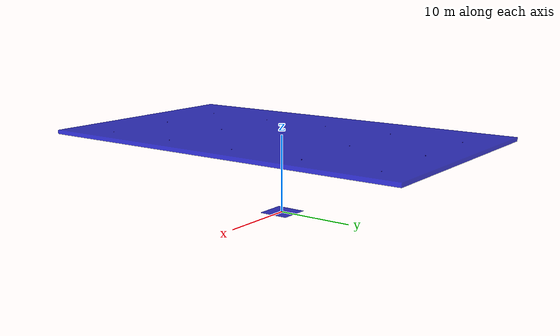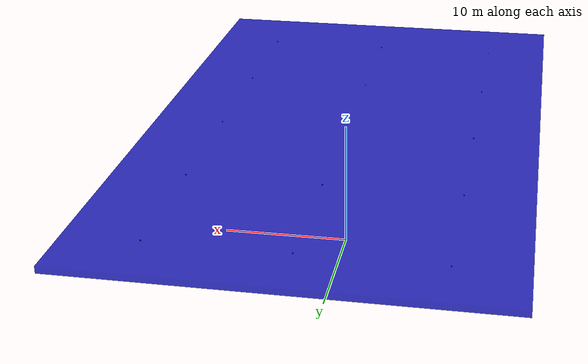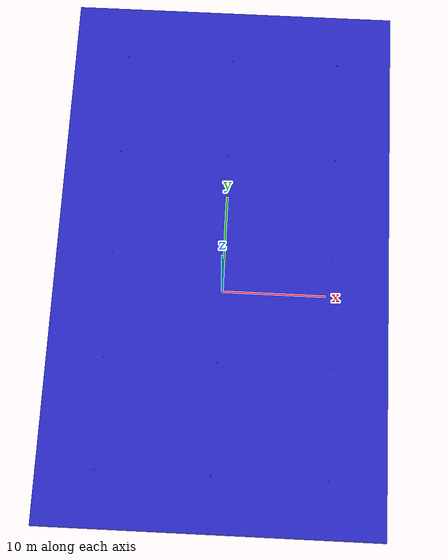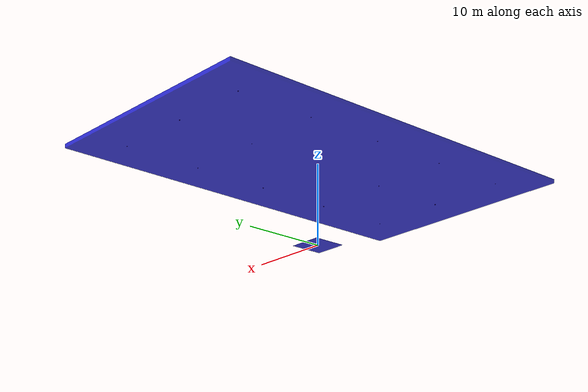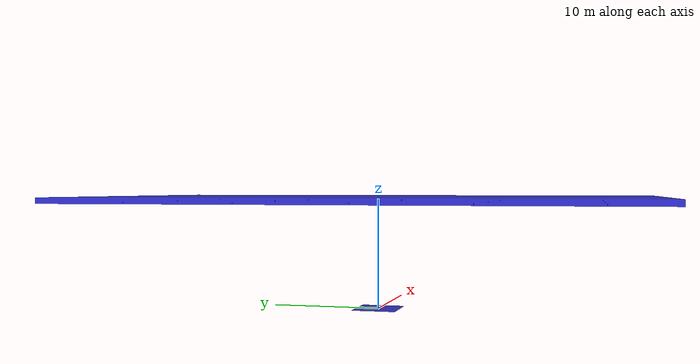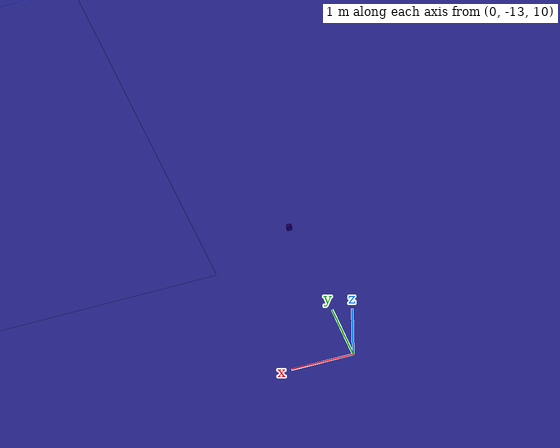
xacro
<?xml version="1.0" ?>
<robot name="factory_cam" xmlns:xacro="http://www.ros.org/wiki/xacro" >
<xacro:include filename = "$(find cam_pack)/urdf/factory_fisheye_cam.plugins.xacro"/>

<xacro:property name="height_off_ground" value="10" />
<xacro:property name="height_off_ground_offset" value="0.2" />
<xacro:property name="cam_separation" value="10" />
<xacro:property name="cam_box_size" value="0.07" />
<xacro:property name="cam_mass" value="0.25" />
<xacro:property name="cam_z_joint_height" value="${height_off_ground - height_off_ground_offset}" />

<xacro:property name="cam_inertia_xx" value="0.00020416666666666668" />
<xacro:property name="cam_inertia_yy" value="0.00020416666666666668" />
<xacro:property name="cam_inertia_zz" value="0.00020416666666666668" />

<xacro:property name="ceiling_mass" value="50" />
<xacro:property name="ceiling_inertia_xx" value="150.16666666666669" />
<xacro:property name="ceiling_inertia_yy" value="337.66666666666674" />
<xacro:property name="ceiling_inertia_zz" value="487.50000000000006" />
<xacro:property name="ceiling_width" value="30" />
<xacro:property name="ceiling_length" value="50" />
<xacro:property name="ceiling_thickness" value="0.5" />

    <!-- Specify material colors here -->
    <material name="blue">
        <color rgba="0 0 0.8 0.8"/>
    </material>
    <material name="red">
        <color rgba="0.8 0 0 1"/>
    </material>
    <material name="grey">
        <color rgba="0.75 0.75 0.75 1"/>
    </material>

    <!-- Gazebo plugin initialization -->
    <gazebo>
        <plugin name="gazebo_ros_control" filename="libgazebo_ros_control.so">
            <robotNamespace>/factory_cam</robotNamespace> This robot name is the same as robot name at the top
        </plugin>
    </gazebo>

     <!-- ////////////////////////// === BASE LINK ==== //////////////////////////////////// -->

   <!-- Main base link -->
    <link name="base_link">
        <visual>
        <origin xyz="0 0 ${height_off_ground}" rpy="0 0 0"/>  created at 31 meters above just to have space to work with
        <geometry>
            <box size="${ceiling_width} ${ceiling_length} ${ceiling_thickness}"/>
        </geometry>
        <material name = "blue"/>
        </visual>

        <collision>
            <origin xyz="0 0 ${height_off_ground}" rpy="0 0 0"/>
            <geometry>
                <box size="${ceiling_width} ${ceiling_length} ${ceiling_thickness}"/>
            </geometry>
        </collision>
        <inertial>
        <mass value="${ceiling_mass}" /> This camera was estimated from the mass(weight) of a logitech camera = 0.25kg
        <origin xyz="0 0 ${height_off_ground}" rpy="0 0 0"/> Inertia was calculated from the inertial calculator program
        <inertia ixx="${ceiling_inertia_xx}" ixy="0" ixz="0" iyy="${ceiling_inertia_yy}" iyz="0" izz="${ceiling_inertia_zz}" />
        </inertial>
    </link>

    This is for color and physical properties in Gazebo, color won't work with the material tag in gazebo
    only for URDF coloring
    <gazebo reference="base_link">
        <turnGravityOff>true</turnGravityOff>
        <mu1>10.0</mu1>
        <mu2>10.0</mu2>
        <material>Gazebo/DarkGrey</material>
        <static>true</static>
    </gazebo>

     <link name="bb">
        <visual>
        <origin xyz="0 0 0" rpy="0 0 0"/>  created at 31 meters above just to have space to work with
        <geometry>
            <box size="4 4 .01"/>
        </geometry>
        <material name = "blue"/>
        </visual>
    </link>

    <gazebo reference="bb">
        <material>Gazebo/Blue</material>
        <static>true</static>
    </gazebo>

    <!-- ////////////////////////// === CAMERA LINKS ==== //////////////////////////////////// -->
 Change camera size to make more visible 0.5 0.5 0.5...original = 0.07 0.07 0.07
    <!-- Camera Link 1-->
    <link name="camera_link_1">
        <collision>
        <origin xyz="0 0 0" rpy="0 0 0"/>
        <geometry>
            <box size="${cam_box_size} ${cam_box_size} ${cam_box_size}"/>
        </geometry>
        </collision>

        <visual>
        <origin xyz="0 0 0" rpy="0 0 0"/>
        <geometry>
            <box size="${cam_box_size} ${cam_box_size} ${cam_box_size}"/>
        </geometry>
        <material name="red"/>
        </visual>

        <inertial>
        <mass value="${cam_mass}" /> This camera was estimated from the mass(weight) of a logitech camera = 0.25kg
        <origin xyz="0 0 0" rpy="0 0 0"/> Inertia was calculated from the inertial calculator program
        <inertia ixx="${cam_inertia_xx}" ixy="0" ixz="0" iyy="${cam_inertia_yy}" iyz="0" izz="${cam_inertia_zz}" />
        </inertial>
    </link>

    <gazebo reference="camera_link_1">
        <turnGravityOff>true</turnGravityOff>
        <mu1>10.0</mu1>
        <mu2>10.0</mu2>
        <material>Gazebo/Red</material>
        <static>true</static>
    </gazebo>

    <!-- Camera Link 2-->
    <link name="camera_link_2">
        <collision>
        <origin xyz="0 0 0" rpy="0 0 0"/>
        <geometry>
            <box size="${cam_box_size} ${cam_box_size} ${cam_box_size}"/>
        </geometry>
        </collision>

        <visual>
        <origin xyz="0 0 0" rpy="0 0 0"/>
        <geometry>
            <box size="${cam_box_size} ${cam_box_size} ${cam_box_size}"/>
        </geometry>
        <material name="red"/>
        </visual>

        <inertial>
        <mass value="${cam_mass}" /> This camera was estimated from the mass(weight) of a logitech camera = 0.25kg
        <origin xyz="0 0 0" rpy="0 0 0"/> Inertia was calculated from the inertial calculator program
        <inertia ixx="${cam_inertia_xx}" ixy="0" ixz="0" iyy="${cam_inertia_yy}" iyz="0" izz="${cam_inertia_zz}" />
        </inertial>
    </link>

    <gazebo reference="camera_link_2">
        <turnGravityOff>true</turnGravityOff>
        <mu1>10.0</mu1>
        <mu2>10.0</mu2>
        <material>Gazebo/Red</material>
        <static>true</static>
    </gazebo>

    <!-- Camera Link 3-->
    <link name="camera_link_3">
        <collision>
        <origin xyz="0 0 0" rpy="0 0 0"/>
        <geometry>
            <box size="${cam_box_size} ${cam_box_size} ${cam_box_size}"/>
        </geometry>
        </collision>

        <visual>
        <origin xyz="0 0 0" rpy="0 0 0"/>
        <geometry>
            <box size="${cam_box_size} ${cam_box_size} ${cam_box_size}"/>
        </geometry>
        <material name="red"/>
        </visual>

        <inertial>
        <mass value="${cam_mass}" /> This camera was estimated from the mass(weight) of a logitech camera = 0.25kg
        <origin xyz="0 0 0" rpy="0 0 0"/> Inertia was calculated from the inertial calculator program
        <inertia ixx="${cam_inertia_xx}" ixy="0" ixz="0" iyy="${cam_inertia_yy}" iyz="0" izz="${cam_inertia_zz}" />
        </inertial>
    </link>

    <gazebo reference="camera_link_3">
        <turnGravityOff>true</turnGravityOff>
        <mu1>10.0</mu1>
        <mu2>10.0</mu2>
        <material>Gazebo/Red</material>
        <static>true</static>
    </gazebo>

    <!-- Camera Link 4-->
    <link name="camera_link_4">
        <collision>
        <origin xyz="0 0 0" rpy="0 0 0"/>
        <geometry>
            <box size="${cam_box_size} ${cam_box_size} ${cam_box_size}"/>
        </geometry>
        </collision>

        <visual>
        <origin xyz="0 0 0" rpy="0 0 0"/>
        <geometry>
            <box size="${cam_box_size} ${cam_box_size} ${cam_box_size}"/>
        </geometry>
        <material name="red"/>
        </visual>

        <inertial>
        <mass value="${cam_mass}" /> This camera was estimated from the mass(weight) of a logitech camera = 0.25kg
        <origin xyz="0 0 0" rpy="0 0 0"/> Inertia was calculated from the inertial calculator program
        <inertia ixx="${cam_inertia_xx}" ixy="0" ixz="0" iyy="${cam_inertia_yy}" iyz="0" izz="${cam_inertia_zz}" />
        </inertial>
    </link>

    <gazebo reference="camera_link_4">
        <turnGravityOff>true</turnGravityOff>
        <mu1>10.0</mu1>
        <mu2>10.0</mu2>
        <material>Gazebo/Red</material>
        <static>true</static>
    </gazebo>

    <!-- Camera Link 5-->
    <link name="camera_link_5">
        <collision>
        <origin xyz="0 0 0" rpy="0 0 0"/>
        <geometry>
            <box size="${cam_box_size} ${cam_box_size} ${cam_box_size}"/>
        </geometry>
        </collision>

        <visual>
        <origin xyz="0 0 0" rpy="0 0 0"/>
        <geometry>
            <box size="${cam_box_size} ${cam_box_size} ${cam_box_size}"/>
        </geometry>
        <material name="red"/>
        </visual>

        <inertial>
        <mass value="${cam_mass}" /> This camera was estimated from the mass(weight) of a logitech camera = 0.25kg
        <origin xyz="0 0 0" rpy="0 0 0"/> Inertia was calculated from the inertial calculator program
        <inertia ixx="${cam_inertia_xx}" ixy="0" ixz="0" iyy="${cam_inertia_yy}" iyz="0" izz="${cam_inertia_zz}" />
        </inertial>
    </link>

    <gazebo reference="camera_link_5">
        <turnGravityOff>true</turnGravityOff>
        <mu1>10.0</mu1>
        <mu2>10.0</mu2>
        <material>Gazebo/Red</material>
        <static>true</static>
    </gazebo>

 <!-- Camera Link 6-->
    <link name="camera_link_6">
        <collision>
        <origin xyz="0 0 0" rpy="0 0 0"/>
        <geometry>
            <box size="${cam_box_size} ${cam_box_size} ${cam_box_size}"/>
        </geometry>
        </collision>

        <visual>
        <origin xyz="0 0 0" rpy="0 0 0"/>
        <geometry>
            <box size="${cam_box_size} ${cam_box_size} ${cam_box_size}"/>
        </geometry>
        <material name="red"/>
        </visual>

        <inertial>
        <mass value="${cam_mass}" /> This camera was estimated from the mass(weight) of a logitech camera = 0.25kg
        <origin xyz="0 0 0" rpy="0 0 0"/> Inertia was calculated from the inertial calculator program
        <inertia ixx="${cam_inertia_xx}" ixy="0" ixz="0" iyy="${cam_inertia_yy}" iyz="0" izz="${cam_inertia_zz}" />
        </inertial>
    </link>

    <gazebo reference="camera_link_6">
        <turnGravityOff>true</turnGravityOff>
        <mu1>10.0</mu1>
        <mu2>10.0</mu2>
        <material>Gazebo/Red</material>
        <static>true</static>
    </gazebo>

<!-- Camera Link 7-->
    <link name="camera_link_7">
        <collision>
        <origin xyz="0 0 0" rpy="0 0 0"/>
        <geometry>
            <box size="${cam_box_size} ${cam_box_size} ${cam_box_size}"/>
        </geometry>
        </collision>

        <visual>
        <origin xyz="0 0 0" rpy="0 0 0"/>
        <geometry>
            <box size="${cam_box_size} ${cam_box_size} ${cam_box_size}"/>
        </geometry>
        <material name="red"/>
        </visual>

        <inertial>
        <mass value="${cam_mass}" /> This camera was estimated from the mass(weight) of a logitech camera = 0.25kg
        <origin xyz="0 0 0" rpy="0 0 0"/> Inertia was calculated from the inertial calculator program
        <inertia ixx="${cam_inertia_xx}" ixy="0" ixz="0" iyy="${cam_inertia_yy}" iyz="0" izz="${cam_inertia_zz}" />
        </inertial>
    </link>

    <gazebo reference="camera_link_7">
        <turnGravityOff>true</turnGravityOff>
        <mu1>10.0</mu1>
        <mu2>10.0</mu2>
        <material>Gazebo/Red</material>
        <static>true</static>
    </gazebo>

    <!-- Camera Link 8-->
    <link name="camera_link_8">
        <collision>
        <origin xyz="0 0 0" rpy="0 0 0"/>
        <geometry>
            <box size="${cam_box_size} ${cam_box_size} ${cam_box_size}"/>
        </geometry>
        </collision>

        <visual>
        <origin xyz="0 0 0" rpy="0 0 0"/>
        <geometry>
            <box size="${cam_box_size} ${cam_box_size} ${cam_box_size}"/>
        </geometry>
        <material name="red"/>
        </visual>

        <inertial>
        <mass value="${cam_mass}" /> This camera was estimated from the mass(weight) of a logitech camera = 0.25kg
        <origin xyz="0 0 0" rpy="0 0 0"/> Inertia was calculated from the inertial calculator program
        <inertia ixx="${cam_inertia_xx}" ixy="0" ixz="0" iyy="${cam_inertia_yy}" iyz="0" izz="${cam_inertia_zz}" />
        </inertial>
    </link>

    <gazebo reference="camera_link_8">
        <turnGravityOff>true</turnGravityOff>
        <mu1>10.0</mu1>
        <mu2>10.0</mu2>
        <material>Gazebo/Red</material>
        <static>true</static>
    </gazebo>

<!-- Camera Link 9-->
    <link name="camera_link_9">
        <collision>
        <origin xyz="0 0 0" rpy="0 0 0"/>
        <geometry>
            <box size="${cam_box_size} ${cam_box_size} ${cam_box_size}"/>
        </geometry>
        </collision>

        <visual>
        <origin xyz="0 0 0" rpy="0 0 0"/>
        <geometry>
            <box size="${cam_box_size} ${cam_box_size} ${cam_box_size}"/>
        </geometry>
        <material name="red"/>
        </visual>

        <inertial>
        <mass value="${cam_mass}" /> This camera was estimated from the mass(weight) of a logitech camera = 0.25kg
        <origin xyz="0 0 0" rpy="0 0 0"/> Inertia was calculated from the inertial calculator program
        <inertia ixx="${cam_inertia_xx}" ixy="0" ixz="0" iyy="${cam_inertia_yy}" iyz="0" izz="${cam_inertia_zz}" />
        </inertial>
    </link>

    <gazebo reference="camera_link_9">
        <turnGravityOff>true</turnGravityOff>
        <mu1>10.0</mu1>
        <mu2>10.0</mu2>
        <material>Gazebo/Red</material>
        <static>true</static>
    </gazebo>

    <!-- Camera Link 10-->
    <link name="camera_link_10">
        <collision>
        <origin xyz="0 0 0" rpy="0 0 0"/>
        <geometry>
            <box size="${cam_box_size} ${cam_box_size} ${cam_box_size}"/>
        </geometry>
        </collision>

        <visual>
        <origin xyz="0 0 0" rpy="0 0 0"/>
        <geometry>
            <box size="${cam_box_size} ${cam_box_size} ${cam_box_size}"/>
        </geometry>
        <material name="red"/>
        </visual>

        <inertial>
        <mass value="${cam_mass}" /> This camera was estimated from the mass(weight) of a logitech camera = 0.25kg
        <origin xyz="0 0 0" rpy="0 0 0"/> Inertia was calculated from the inertial calculator program
        <inertia ixx="${cam_inertia_xx}" ixy="0" ixz="0" iyy="${cam_inertia_yy}" iyz="0" izz="${cam_inertia_zz}" />
        </inertial>
    </link>

    <gazebo reference="camera_link_10">
        <turnGravityOff>true</turnGravityOff>
        <mu1>10.0</mu1>
        <mu2>10.0</mu2>
        <material>Gazebo/Red</material>
        <static>true</static>
    </gazebo>

    <!-- Camera Link 11-->
    <link name="camera_link_11">
        <collision>
        <origin xyz="0 0 0" rpy="0 0 0"/>
        <geometry>
            <box size="${cam_box_size} ${cam_box_size} ${cam_box_size}"/>
        </geometry>
        </collision>

        <visual>
        <origin xyz="0 0 0" rpy="0 0 0"/>
        <geometry>
            <box size="${cam_box_size} ${cam_box_size} ${cam_box_size}"/>
        </geometry>
        <material name="red"/>
        </visual>

        <inertial>
        <mass value="${cam_mass}" /> This camera was estimated from the mass(weight) of a logitech camera = 0.25kg
        <origin xyz="0 0 0" rpy="0 0 0"/> Inertia was calculated from the inertial calculator program
        <inertia ixx="${cam_inertia_xx}" ixy="0" ixz="0" iyy="${cam_inertia_yy}" iyz="0" izz="${cam_inertia_zz}" />
        </inertial>
    </link>

    <gazebo reference="camera_link_11">
        <turnGravityOff>true</turnGravityOff>
        <mu1>10.0</mu1>
        <mu2>10.0</mu2>
        <material>Gazebo/Red</material>
        <static>true</static>
    </gazebo>

    <!-- Camera Link 12-->
    <link name="camera_link_12">
        <collision>
        <origin xyz="0 0 0" rpy="0 0 0"/>
        <geometry>
            <box size="${cam_box_size} ${cam_box_size} ${cam_box_size}"/>
        </geometry>
        </collision>

        <visual>
        <origin xyz="0 0 0" rpy="0 0 0"/>
        <geometry>
            <box size="${cam_box_size} ${cam_box_size} ${cam_box_size}"/>
        </geometry>
        <material name="red"/>
        </visual>

        <inertial>
        <mass value="${cam_mass}" /> This camera was estimated from the mass(weight) of a logitech camera = 0.25kg
        <origin xyz="0 0 0" rpy="0 0 0"/> Inertia was calculated from the inertial calculator program
        <inertia ixx="${cam_inertia_xx}" ixy="0" ixz="0" iyy="${cam_inertia_yy}" iyz="0" izz="${cam_inertia_zz}" />
        </inertial>
    </link>

    <gazebo reference="camera_link_12">
        <turnGravityOff>true</turnGravityOff>
        <mu1>10.0</mu1>
        <mu2>10.0</mu2>
        <material>Gazebo/Red</material>
        <static>true</static>
    </gazebo>

    <!-- Camera Link 13-->
    <link name="camera_link_13">
        <collision>
        <origin xyz="0 0 0" rpy="0 0 0"/>
        <geometry>
            <box size="${cam_box_size} ${cam_box_size} ${cam_box_size}"/>
        </geometry>
        </collision>

        <visual>
        <origin xyz="0 0 0" rpy="0 0 0"/>
        <geometry>
            <box size="${cam_box_size} ${cam_box_size} ${cam_box_size}"/>
        </geometry>
        <material name="red"/>
        </visual>

        <inertial>
        <mass value="${cam_mass}" /> This camera was estimated from the mass(weight) of a logitech camera = 0.25kg
        <origin xyz="0 0 0" rpy="0 0 0"/> Inertia was calculated from the inertial calculator program
        <inertia ixx="${cam_inertia_xx}" ixy="0" ixz="0" iyy="${cam_inertia_yy}" iyz="0" izz="${cam_inertia_zz}" />
        </inertial>
    </link>

    <gazebo reference="camera_link_13">
        <turnGravityOff>true</turnGravityOff>
        <mu1>10.0</mu1>
        <mu2>10.0</mu2>
        <material>Gazebo/Red</material>
        <static>true</static>
    </gazebo>
    <!-- Camera Link 14-->
    <link name="camera_link_14">
        <collision>
        <origin xyz="0 0 0" rpy="0 0 0"/>
        <geometry>
            <box size="${cam_box_size} ${cam_box_size} ${cam_box_size}"/>
        </geometry>
        </collision>

        <visual>
        <origin xyz="0 0 0" rpy="0 0 0"/>
        <geometry>
            <box size="${cam_box_size} ${cam_box_size} ${cam_box_size}"/>
        </geometry>
        <material name="red"/>
        </visual>

        <inertial>
        <mass value="${cam_mass}" /> This camera was estimated from the mass(weight) of a logitech camera = 0.25kg
        <origin xyz="0 0 0" rpy="0 0 0"/> Inertia was calculated from the inertial calculator program
        <inertia ixx="${cam_inertia_xx}" ixy="0" ixz="0" iyy="${cam_inertia_yy}" iyz="0" izz="${cam_inertia_zz}" />
        </inertial>
    </link>

    <gazebo reference="camera_link_14">
        <turnGravityOff>true</turnGravityOff>
        <mu1>10.0</mu1>
        <mu2>10.0</mu2>
        <material>Gazebo/Red</material>
        <static>true</static>
    </gazebo>

    <!-- Camera Link 15-->
    <link name="camera_link_15">
        <collision>
        <origin xyz="0 0 0" rpy="0 0 0"/>
        <geometry>
            <box size="${cam_box_size} ${cam_box_size} ${cam_box_size}"/>
        </geometry>
        </collision>

        <visual>
        <origin xyz="0 0 0" rpy="0 0 0"/>
        <geometry>
            <box size="${cam_box_size} ${cam_box_size} ${cam_box_size}"/>
        </geometry>
        <material name="red"/>
        </visual>

        <inertial>
        <mass value="${cam_mass}" /> This camera was estimated from the mass(weight) of a logitech camera = 0.25kg
        <origin xyz="0 0 0" rpy="0 0 0"/> Inertia was calculated from the inertial calculator program
        <inertia ixx="${cam_inertia_xx}" ixy="0" ixz="0" iyy="${cam_inertia_yy}" iyz="0" izz="${cam_inertia_zz}" />
        </inertial>
    </link>

    <gazebo reference="camera_link_15">
        <turnGravityOff>true</turnGravityOff>
        <mu1>10.0</mu1>
        <mu2>10.0</mu2>
        <material>Gazebo/Red</material>
        <static>true</static>
    </gazebo>

    <!-- ////////////////////////// === Joints ==== //////////////////////////////////// -->
  I can spawn all the camera links at origin 0 0 0  but I use the joints to move them to the positions I want them in.

    <!-- joint = base_link to camera_link -->      camera 1,-2
    <joint name="camera_joint_1" type="fixed">
        <origin xyz="${1*cam_separation} ${-2*cam_separation} ${cam_z_joint_height}" rpy="0 0 0"/>
        <parent link="base_link"/>
        <child link="camera_link_1"/>
    </joint>
    1 meter spacing between cameras(not exactly)
    <!-- joint = base_link to camera_link -->       camera 1,-1
    <joint name="camera_joint_2" type="fixed">
        <origin xyz="${1*cam_separation} ${-1*cam_separation} ${cam_z_joint_height}" rpy="0 0 0"/>
        <parent link="base_link"/>
        <child link="camera_link_2"/>
    </joint>

    <!-- joint = base_link to camera_link -->       camera 1,0
    <joint name="camera_joint_3" type="fixed">
        <origin xyz="${1*cam_separation} ${0*cam_separation}  ${cam_z_joint_height}" rpy="0 0 0"/>
        <parent link="base_link"/>
        <child link="camera_link_3"/>
    </joint>

     <!-- joint = base_link to camera_link -->       camera 1,1
    <joint name="camera_joint_4" type="fixed">
        <origin xyz="${1*cam_separation} ${1*cam_separation}  ${cam_z_joint_height}" rpy="0 0 0"/>
        <parent link="base_link"/>
        <child link="camera_link_4"/>
    </joint>

    <!-- joint = base_link to camera_link -->       camera 1,2
    <joint name="camera_joint_5" type="fixed">
        <origin xyz="${1*cam_separation} ${2*cam_separation}  ${cam_z_joint_height}" rpy="0 0 0"/>
        <parent link="base_link"/>
        <child link="camera_link_5"/>
    </joint>

    <!-- joint = base_link to camera_link -->       camera 0,-2
    <joint name="camera_joint_6" type="fixed">
        <origin xyz="${0*cam_separation} ${-2*cam_separation}  ${cam_z_joint_height}" rpy="0 0 0"/>
        <parent link="base_link"/>
        <child link="camera_link_6"/>
    </joint>

    <!-- joint = base_link to camera_link -->       camera 0,-1
    <joint name="camera_joint_7" type="fixed">
        <origin xyz="${0*cam_separation} ${-1*cam_separation}  ${cam_z_joint_height}" rpy="0 0 0"/>
        <parent link="base_link"/>
        <child link="camera_link_7"/>
    </joint>

    <!-- joint = base_link to camera_link -->       camera 0,0 (Center Camera)
    <joint name="camera_joint_8" type="fixed">
        <origin xyz="${0*cam_separation} ${0*cam_separation} ${cam_z_joint_height}" rpy="0 0 0"/>
        <parent link="base_link"/>
        <child link="camera_link_8"/>
    </joint>

    <!-- joint = base_link to camera_link -->       camera 0,1
    <joint name="camera_joint_9" type="fixed">
        <origin xyz="${0*cam_separation} ${1*cam_separation} ${cam_z_joint_height}" rpy="0 0 0"/>
        <parent link="base_link"/>
        <child link="camera_link_9"/>
    </joint>

    <!-- joint = base_link to camera_link -->       camera 0,2
    <joint name="camera_joint_10" type="fixed">
        <origin xyz="${0*cam_separation} ${2*cam_separation} ${cam_z_joint_height}" rpy="0 0 0"/>
        <parent link="base_link"/>
        <child link="camera_link_10"/>
    </joint>

    <!-- joint = base_link to camera_link -->       camera -1,-2
    <joint name="camera_joint_11" type="fixed">
        <origin xyz="${-1*cam_separation} ${-2*cam_separation} ${cam_z_joint_height}" rpy="0 0 0"/>
        <parent link="base_link"/>
        <child link="camera_link_11"/>
    </joint>

     <!-- joint = base_link to camera_link -->       camera -1,-1
    <joint name="camera_joint_12" type="fixed">
        <origin xyz="${-1*cam_separation} ${-1*cam_separation} ${cam_z_joint_height}" rpy="0 0 0"/>
        <parent link="base_link"/>
        <child link="camera_link_12"/>
    </joint>

     <!-- joint = base_link to camera_link -->       camera -1,0
    <joint name="camera_joint_13" type="fixed">
        <origin xyz="${-1*cam_separation} ${0*cam_separation} ${cam_z_joint_height}" rpy="0 0 0"/>
        <parent link="base_link"/>
        <child link="camera_link_13"/>
    </joint>

     <!-- joint = base_link to camera_link -->       camera -1,1
    <joint name="camera_joint_14" type="fixed">
        <origin xyz="${-1*cam_separation} ${1*cam_separation} ${cam_z_joint_height}" rpy="0 0 0"/>
        <parent link="base_link"/>
        <child link="camera_link_14"/>
    </joint>

     <!-- joint = base_link to camera_link -->       camera -1,2
    <joint name="camera_joint_15" type="fixed">
        <origin xyz="${-1*cam_separation} ${2*cam_separation} ${cam_z_joint_height}" rpy="0 0 0"/>
        <parent link="base_link"/>
        <child link="camera_link_15"/>
    </joint>

     <joint name="bb_joint" type="fixed">
        <origin xyz="0 0 0" rpy="0 0 0"/>
        <parent link="base_link"/>
        <child link="bb"/>
    </joint>

</robot>
